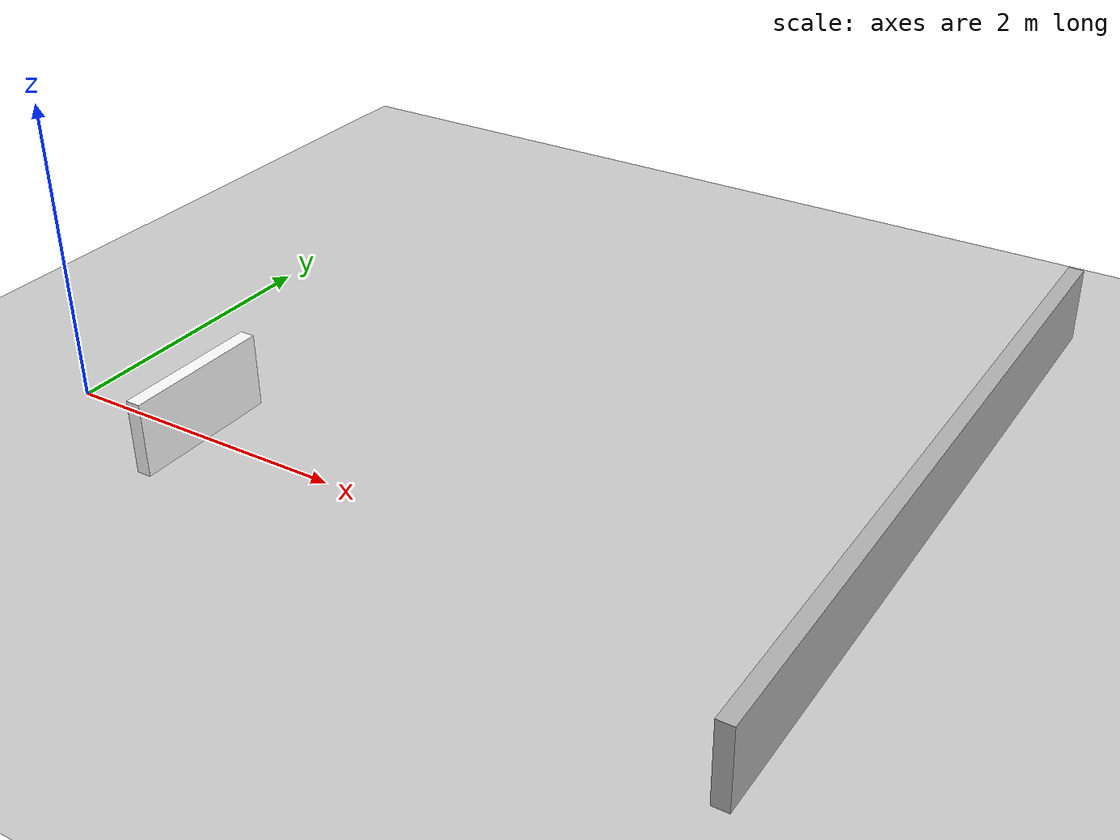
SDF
<?xml version="1.0" ?>
<sdf version='1.10'>
  <world name='final'>
    <physics name='1ms' type='ignored'>
      <max_step_size>0.0050000000000000001</max_step_size>
      <real_time_factor>1</real_time_factor>
      <real_time_update_rate>500</real_time_update_rate>
    </physics>
    <plugin name='gz::sim::systems::Physics' filename='gz-sim-physics-system'/>
    <plugin name='gz::sim::systems::UserCommands' filename='gz-sim-user-commands-system'/>
    <plugin name='gz::sim::systems::SceneBroadcaster' filename='gz-sim-scene-broadcaster-system'/>
    <plugin name='gz::sim::systems::Contact' filename='gz-sim-contact-system'/>
    <plugin name="gz::sim::systems::Sensors" filename="gz-sim-sensors-system">
      <render_engine>ogre2</render_engine>
    </plugin>
    <gravity>0 0 -9.8000000000000007</gravity>
    <magnetic_field>5.5644999999999998e-06 2.2875799999999999e-05 -4.2388400000000002e-05</magnetic_field>
    <atmosphere type='adiabatic'/>
    <scene>
      <ambient>0.400000006 0.400000006 0.400000006 1</ambient>
      <background>0.699999988 0.699999988 0.699999988 1</background>
      <shadows>true</shadows>
    </scene>
    <gui>
      <camera name='user_camera'>
        <pose>0 0 10 0 -1.5700000000004057 0</pose>
      </camera>
    </gui>

<model name='front_wall'>
      <pose>1.0 0 0.25 0 0 0</pose>
      <static>true</static>
      <link name='wall_link'>
        <!-- 벽 본체 -->
        <collision name='wall_collision'>
          <geometry>
            <box>
              <size>0.1 1.0 0.5</size>
            </box>
          </geometry>
        </collision>
        <visual name='wall_visual'>
          <geometry>
            <box>
              <size>0.1 1.0 0.5</size>
            </box>
          </geometry>
          <material>
            <!-- 순수한 흰색으로 설정 -->
            <ambient>1 1 1 1</ambient>
            <diffuse>1 1 1 1</diffuse>
            <specular>0.1 0.1 0.1 1</specular>
          </material>
        </visual>

        <!-- 첫 번째 아루코 마커 (ID: 1) -->
        <visual name='wall_marker_1'>
          <pose>-0.051 0.2 0 0 -1.5708 0</pose>
          <geometry>
            <box>
              <size>0.3 0.3 0.0001</size>
            </box>
          </geometry>
          <material>
            <ambient>1 1 1 1</ambient>
            <diffuse>1 1 1 1</diffuse>
            <pbr>
              <metal>
                <albedo_map>model://aruco_cube/materials/textures/aruco_1.png</albedo_map>
                <roughness>1.0</roughness>
                <metalness>0.0</metalness>
              </metal>
            </pbr>
          </material>
        </visual>

        <!-- 두 번째 아루코 마커 (ID: 2) -->
        <visual name='wall_marker_2'>
          <pose>-0.051 -0.2 0 0 -1.5708 0</pose>
          <geometry>
            <box>
              <size>0.3 0.3 0.0001</size>
            </box>
          </geometry>
          <material>
            <ambient>1 1 1 1</ambient>
            <diffuse>1 1 1 1</diffuse>
            <pbr>
              <metal>
                <albedo_map>model://aruco_cube/materials/textures/aruco_6.png</albedo_map>
                <roughness>1.0</roughness>
                <metalness>0.0</metalness>
              </metal>
            </pbr>
          </material>
        </visual>

      </link>
    </model>

    <model name='ground_plan_a'>
      <static>true</static>
      <link name='link'>
        <collision name='collision'>
          <geometry>
            <plane>
              <normal>0 0 1</normal>
              <size>100 100</size>
            </plane>
          </geometry>
          <surface>
            <friction>
              <ode/>
            </friction>
            <bounce/>
            <contact/>
          </surface>
        </collision>
        <visual name='visual'>
          <geometry>
            <plane>
              <normal>0 0 1</normal>
              <size>100 100</size>
            </plane>
          </geometry>
          <material>
            <ambient>0.800000012 0.800000012 0.800000012 1</ambient>
            <diffuse>0.800000012 0.800000012 0.800000012 1</diffuse>
            <specular>0.800000012 0.800000012 0.800000012 1</specular>
          </material>
        </visual>
        <pose>0 0 0 0 0 0</pose>
        <inertial>
          <pose>0 0 0 0 0 0</pose>
          <mass>1</mass>
          <inertia>
            <ixx>1</ixx>
            <ixy>0</ixy>
            <ixz>0</ixz>
            <iyy>1</iyy>
            <iyz>0</iyz>
            <izz>1</izz>
          </inertia>
        </inertial>
        <enable_wind>false</enable_wind>
      </link>
      <pose>0 0 0 0 0 0</pose>
      <self_collide>false</self_collide>
    </model>
    <model name='box'>
      <pose>5.3351101875305176 1.1423105628707289 0.49999964374511835 2.2249889111800282e-07 3.5031224552452505e-17 -6.3657622294056747e-17</pose>
      <link name='box_link'>
        <inertial>
          <inertia>
            <ixx>0.16666</ixx>
            <ixy>0</ixy>
            <ixz>0</ixz>
            <iyy>0.16666</iyy>
            <iyz>0</iyz>
            <izz>0.16666</izz>
          </inertia>
          <mass>1</mass>
          <pose>0 0 0 0 0 0</pose>
        </inertial>
        <collision name='box_collision'>
          <geometry>
            <box>
              <size>0.10000000000000001 5 0.5</size>
            </box>
          </geometry>
          <surface>
            <friction>
              <ode/>
            </friction>
            <bounce/>
            <contact/>
          </surface>
        </collision>
        <visual name='box_visual'>
          <geometry>
            <box>
              <size>0.10000000000000001 5 0.5</size>
            </box>
          </geometry>
          <material>
            <ambient>0.300000012 0.300000012 0.300000012 1</ambient>
            <diffuse>0.699999988 0.699999988 0.699999988 1</diffuse>
            <specular>1 1 1 1</specular>
          </material>
        </visual>
        <pose>0 0 0 0 0 0</pose>
        <enable_wind>false</enable_wind>
      </link>
      <static>false</static>
      <self_collide>false</self_collide>
    </model>

    <light name='sun' type='directional'>
      <pose>0 0 10 0 0 0</pose>
      <cast_shadows>true</cast_shadows>
      <intensity>1</intensity>
      <direction>-0.5 0.10000000000000001 -0.90000000000000002</direction>
      <diffuse>0.800000012 0.800000012 0.800000012 1</diffuse>
      <specular>0.200000003 0.200000003 0.200000003 1</specular>
      <attenuation>
        <range>1000</range>
        <linear>0.0099999997764825821</linear>
        <constant>0.89999997615814209</constant>
        <quadratic>0.0010000000474974513</quadratic>
      </attenuation>
      <spot>
        <inner_angle>0</inner_angle>
        <outer_angle>0</outer_angle>
        <falloff>0</falloff>
      </spot>
    </light>
  </world>
</sdf>
